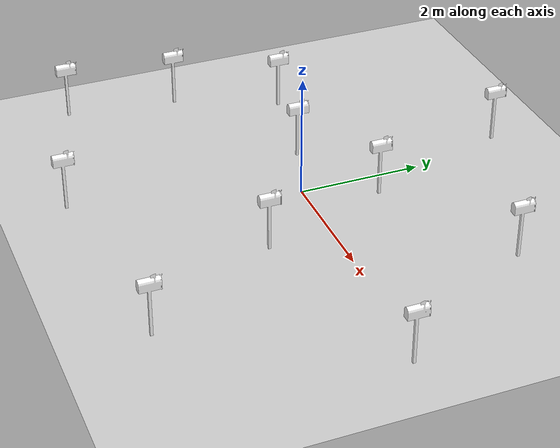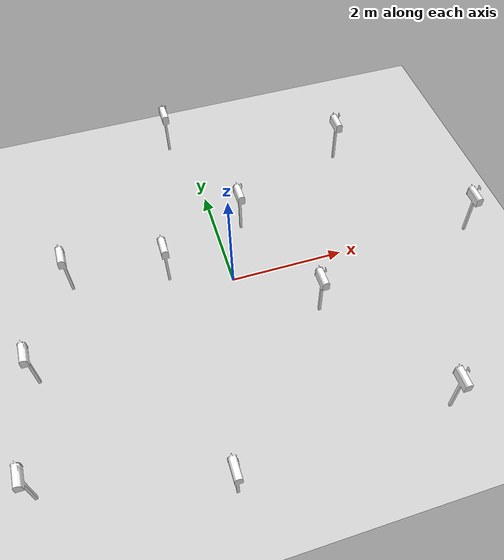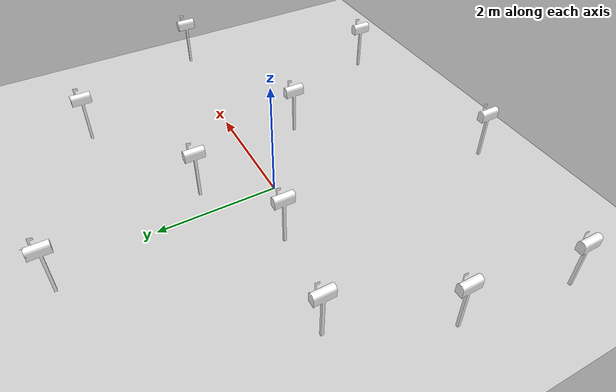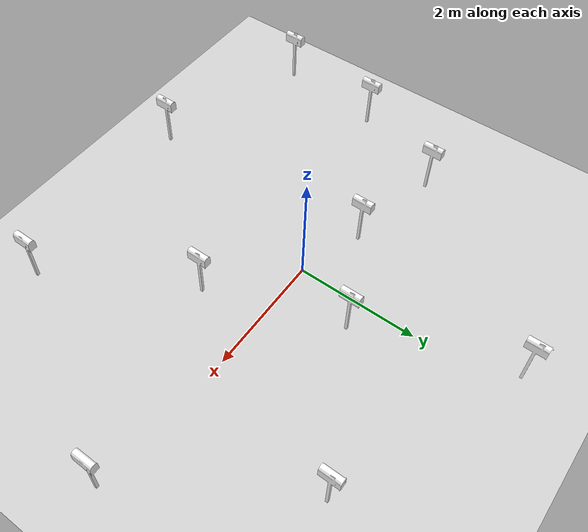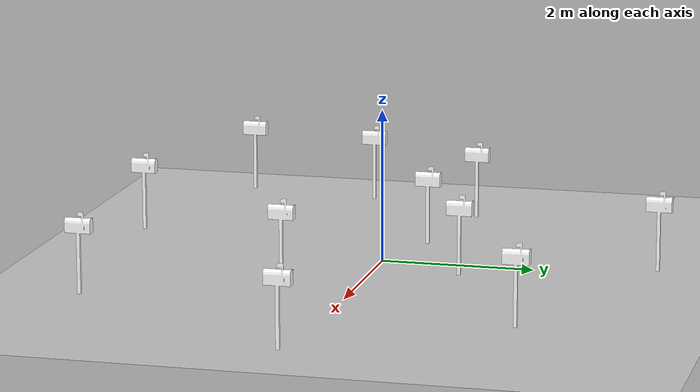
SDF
<sdf version="1.7">
 <world name="default">
  <light name="sun" type="directional">
   <pose>0 0 10 0 -0 0</pose>
   <diffuse>0.8 0.8 0.8 1</diffuse>
   <specular>0.2 0.2 0.2 1</specular>
   <attenuation>
    <range>1000</range>
    <constant>0.9</constant>
    <linear>0.01</linear>
    <quadratic>0.001</quadratic>
   </attenuation>
   <direction>-0.5 0.1 -0.9</direction>
   <spot><inner_angle>0</inner_angle><outer_angle>0</outer_angle><falloff>0</falloff></spot>
  </light>
  <model name="ground_plane">
   <static>1</static>
   <link name="link">
    <collision name="collision">
     <geometry><plane><normal>0 0 1</normal><size>100 100</size></plane></geometry>
     <surface><friction><ode><mu>100</mu><mu2>50</mu2></ode></friction></surface>
    </collision>
    <visual name="visual">
     <cast_shadows>0</cast_shadows>
     <geometry><plane><normal>0 0 1</normal><size>100 100</size></plane></geometry>
     <material>
      <script><uri>file://media/materials/scripts/gazebo.material</uri><name>Gazebo/Grey</name></script>
     </material>
    </visual>
   </link>
  </model>
  <gravity>0 0 -9.8</gravity>
  <magnetic_field>6e-06 2.3e-05 -4.2e-05</magnetic_field>
  <atmosphere type="adiabatic"/>
  <physics type="ode">
   <max_step_size>0.001</max_step_size>
   <real_time_factor>1</real_time_factor>
   <real_time_update_rate>1000</real_time_update_rate>
   <gravity>0 0 -9.8</gravity>
  </physics>
  <scene><ambient>0.4 0.4 0.4 1</ambient><background>0.7 0.7 0.7 1</background><shadows>1</shadows></scene>
  <spherical_coordinates>
   <surface_model>EARTH_WGS84</surface_model>
   <latitude_deg>0</latitude_deg>
   <longitude_deg>0</longitude_deg>
   <elevation>0</elevation>
   <heading_deg>0</heading_deg>
  </spherical_coordinates>
  <model name="Mailbox">
   <link name="link">
    <collision name="collision">
     <geometry><mesh><uri>model://mailbox/meshes/mailbox.dae</uri></mesh></geometry>
    </collision>
    <visual name="visual">
     <geometry><mesh><uri>model://mailbox/meshes/mailbox.dae</uri></mesh></geometry>
     <material>
      <script>
       <uri>model://mailbox/materials/scripts</uri>
       <uri>model://mailbox/materials/textures</uri>
       <name>Mailbox/Diffuse</name>
      </script>
     </material>
    </visual>
    <inertial>
     <inertia><ixx>1</ixx><ixy>0</ixy><ixz>0</ixz><iyy>1</iyy><iyz>0</iyz><izz>1</izz></inertia>
     <mass>1</mass>
    </inertial>
   </link>
   <pose>-1.06042 0.359586 -1e-05 3e-06 -5e-06 0</pose>
  </model>
  <model name="Mailbox_0">
   <link name="link">
    <collision name="collision">
     <geometry><mesh><uri>model://mailbox/meshes/mailbox.dae</uri></mesh></geometry>
    </collision>
    <visual name="visual">
     <geometry><mesh><uri>model://mailbox/meshes/mailbox.dae</uri></mesh></geometry>
     <material>
      <script>
       <uri>model://mailbox/materials/scripts</uri>
       <uri>model://mailbox/materials/textures</uri>
       <name>Mailbox/Diffuse</name>
      </script>
     </material>
    </visual>
    <inertial>
     <inertia><ixx>1</ixx><ixy>0</ixy><ixz>0</ixz><iyy>1</iyy><iyz>0</iyz><izz>1</izz></inertia>
     <mass>1</mass>
    </inertial>
   </link>
   <pose>0.461772 1.12219 -1e-05 -2e-06 -7e-06 0</pose>
  </model>
  <model name="Mailbox_1">
   <link name="link">
    <collision name="collision">
     <geometry><mesh><uri>model://mailbox/meshes/mailbox.dae</uri></mesh></geometry>
    </collision>
    <visual name="visual">
     <geometry><mesh><uri>model://mailbox/meshes/mailbox.dae</uri></mesh></geometry>
     <material>
      <script>
       <uri>model://mailbox/materials/scripts</uri>
       <uri>model://mailbox/materials/textures</uri>
       <name>Mailbox/Diffuse</name>
      </script>
     </material>
    </visual>
    <inertial>
     <inertia><ixx>1</ixx><ixy>0</ixy><ixz>0</ixz><iyy>1</iyy><iyz>0</iyz><izz>1</izz></inertia>
     <mass>1</mass>
    </inertial>
   </link>
   <pose>1.2171 -1.02415 0 -7e-06 -4e-06 0</pose>
  </model>
  <model name="Mailbox_2">
   <link name="link">
    <collision name="collision">
     <geometry><mesh><uri>model://mailbox/meshes/mailbox.dae</uri></mesh></geometry>
    </collision>
    <visual name="visual">
     <geometry><mesh><uri>model://mailbox/meshes/mailbox.dae</uri></mesh></geometry>
     <material>
      <script>
       <uri>model://mailbox/materials/scripts</uri>
       <uri>model://mailbox/materials/textures</uri>
       <name>Mailbox/Diffuse</name>
      </script>
     </material>
    </visual>
    <inertial>
     <inertia><ixx>1</ixx><ixy>0</ixy><ixz>0</ixz><iyy>1</iyy><iyz>0</iyz><izz>1</izz></inertia>
     <mass>1</mass>
    </inertial>
   </link>
   <pose>-0.946745 -3.5507 0 -1e-05 0 0</pose>
  </model>
  <model name="Mailbox_3">
   <link name="link">
    <collision name="collision">
     <geometry><mesh><uri>model://mailbox/meshes/mailbox.dae</uri></mesh></geometry>
    </collision>
    <visual name="visual">
     <geometry><mesh><uri>model://mailbox/meshes/mailbox.dae</uri></mesh></geometry>
     <material>
      <script>
       <uri>model://mailbox/materials/scripts</uri>
       <uri>model://mailbox/materials/textures</uri>
       <name>Mailbox/Diffuse</name>
      </script>
     </material>
    </visual>
    <inertial>
     <inertia><ixx>1</ixx><ixy>0</ixy><ixz>0</ixz><iyy>1</iyy><iyz>0</iyz><izz>1</izz></inertia>
     <mass>1</mass>
    </inertial>
   </link>
   <pose>-2.69436 0.672212 -9e-06 -9e-06 1e-06 0</pose>
  </model>
  <model name="Mailbox_4">
   <link name="link">
    <collision name="collision">
     <geometry><mesh><uri>model://mailbox/meshes/mailbox.dae</uri></mesh></geometry>
    </collision>
    <visual name="visual">
     <geometry><mesh><uri>model://mailbox/meshes/mailbox.dae</uri></mesh></geometry>
     <material>
      <script>
       <uri>model://mailbox/materials/scripts</uri>
       <uri>model://mailbox/materials/textures</uri>
       <name>Mailbox/Diffuse</name>
      </script>
     </material>
    </visual>
    <inertial>
     <inertia><ixx>1</ixx><ixy>0</ixy><ixz>0</ixz><iyy>1</iyy><iyz>0</iyz><izz>1</izz></inertia>
     <mass>1</mass>
    </inertial>
   </link>
   <pose>-3.67785 -2.77694 0 7e-06 -8e-06 -0</pose>
  </model>
  <model name="Mailbox_5">
   <link name="link">
    <collision name="collision">
     <geometry><mesh><uri>model://mailbox/meshes/mailbox.dae</uri></mesh></geometry>
    </collision>
    <visual name="visual">
     <geometry><mesh><uri>model://mailbox/meshes/mailbox.dae</uri></mesh></geometry>
     <material>
      <script>
       <uri>model://mailbox/materials/scripts</uri>
       <uri>model://mailbox/materials/textures</uri>
       <name>Mailbox/Diffuse</name>
      </script>
     </material>
    </visual>
    <inertial>
     <inertia><ixx>1</ixx><ixy>0</ixy><ixz>0</ixz><iyy>1</iyy><iyz>0</iyz><izz>1</izz></inertia>
     <mass>1</mass>
    </inertial>
   </link>
   <pose>-0.346935 3.56174 -0 -3e-06 -3e-06 0</pose>
  </model>
  <model name="Mailbox_6">
   <link name="link">
    <collision name="collision">
     <geometry><mesh><uri>model://mailbox/meshes/mailbox.dae</uri></mesh></geometry>
    </collision>
    <visual name="visual">
     <geometry><mesh><uri>model://mailbox/meshes/mailbox.dae</uri></mesh></geometry>
     <material>
      <script>
       <uri>model://mailbox/materials/scripts</uri>
       <uri>model://mailbox/materials/textures</uri>
       <name>Mailbox/Diffuse</name>
      </script>
     </material>
    </visual>
    <inertial>
     <inertia><ixx>1</ixx><ixy>0</ixy><ixz>0</ixz><iyy>1</iyy><iyz>0</iyz><izz>1</izz></inertia>
     <mass>1</mass>
    </inertial>
   </link>
   <pose>2.75307 2.32372 -1e-05 -1e-06 -5e-06 0</pose>
  </model>
  <model name="Mailbox_7">
   <link name="link">
    <collision name="collision">
     <geometry><mesh><uri>model://mailbox/meshes/mailbox.dae</uri></mesh></geometry>
    </collision>
    <visual name="visual">
     <geometry><mesh><uri>model://mailbox/meshes/mailbox.dae</uri></mesh></geometry>
     <material>
      <script>
       <uri>model://mailbox/materials/scripts</uri>
       <uri>model://mailbox/materials/textures</uri>
       <name>Mailbox/Diffuse</name>
      </script>
     </material>
    </visual>
    <inertial>
     <inertia><ixx>1</ixx><ixy>0</ixy><ixz>0</ixz><iyy>1</iyy><iyz>0</iyz><izz>1</izz></inertia>
     <mass>1</mass>
    </inertial>
   </link>
   <pose>2.5202 -3.27894 0 4e-06 -5e-06 0</pose>
  </model>
  <model name="Mailbox_8">
   <link name="link">
    <collision name="collision">
     <geometry><mesh><uri>model://mailbox/meshes/mailbox.dae</uri></mesh></geometry>
    </collision>
    <visual name="visual">
     <geometry><mesh><uri>model://mailbox/meshes/mailbox.dae</uri></mesh></geometry>
     <material>
      <script>
       <uri>model://mailbox/materials/scripts</uri>
       <uri>model://mailbox/materials/textures</uri>
       <name>Mailbox/Diffuse</name>
      </script>
     </material>
    </visual>
    <inertial>
     <inertia><ixx>1</ixx><ixy>0</ixy><ixz>0</ixz><iyy>1</iyy><iyz>0</iyz><izz>1</izz></inertia>
     <mass>1</mass>
    </inertial>
   </link>
   <pose>-3.4377 -0.965464 -9e-06 -2e-06 -4e-06 -0</pose>
  </model>
  <model name="Mailbox_9">
   <link name="link">
    <collision name="collision">
     <geometry><mesh><uri>model://mailbox/meshes/mailbox.dae</uri></mesh></geometry>
    </collision>
    <visual name="visual">
     <geometry><mesh><uri>model://mailbox/meshes/mailbox.dae</uri></mesh></geometry>
     <material>
      <script>
       <uri>model://mailbox/materials/scripts</uri>
       <uri>model://mailbox/materials/textures</uri>
       <name>Mailbox/Diffuse</name>
      </script>
     </material>
    </visual>
    <inertial>
     <inertia><ixx>1</ixx><ixy>0</ixy><ixz>0</ixz><iyy>1</iyy><iyz>0</iyz><izz>1</izz></inertia>
     <mass>1</mass>
    </inertial>
   </link>
   <pose>4.38262 -0.180717 -0 0 -8e-06 0</pose>
  </model>
 </world>
</sdf>
